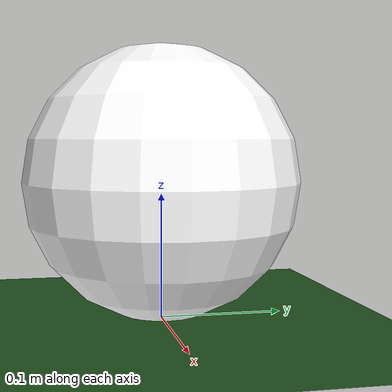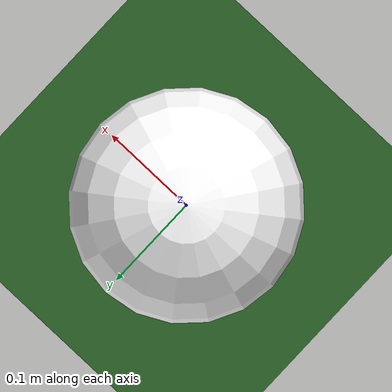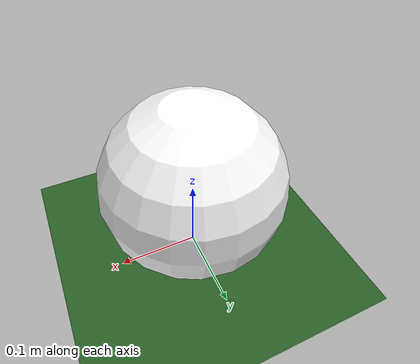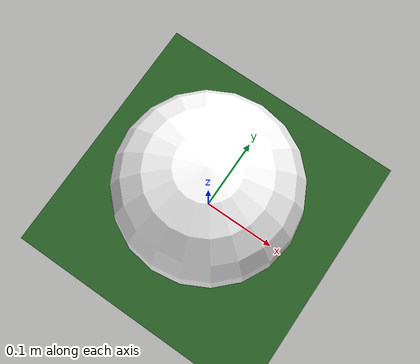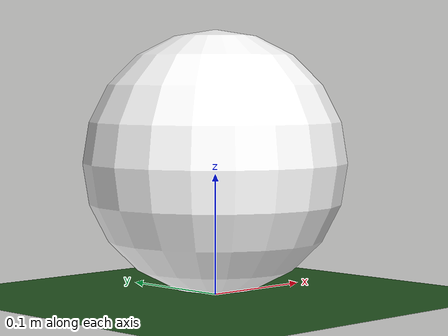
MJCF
<mujoco>
  <compiler angle="radian" assetdir="assets"/>

  <option timestep="0.005" density="1.2" viscosity="0.00002"/>

  <default>
    <!-- geometry classes -->
    <default class="visual">
      <geom contype="0" conaffinity="0" group="2" density="0"/>
    </default>
  </default>

  <asset>
    <!-- Material for the soccer field. -->
    <texture name="field-grass" type="2d" file="field_grass.png"/>
    <material name="pitch" reflectance="0.0" texture="field-grass" rgba="0.5 0.6 0.55 1"/>

    <!-- Material for the field border. -->
    <texture name="border-grass" type="2d" file="border_grass.png"/>
    <material name="lr-border" reflectance="0.0" texture="border-grass" rgba="0.4 0.5 0.45 1"/>
    <material name="tb-border" reflectance="0.0" texture="border-grass" rgba="0.4 0.5 0.45 1"/>

    <!-- Material for the field line markings. -->
    <material name="line" rgba="0.92 0.96 0.90 1"/>

    <!-- Material for the goal posts and nets. -->
    <material name="goal-post" rgba="0.8 0.8 0.8 1"/>
    <material name="goal-net" rgba="1 1 1 0.2"/>

    <!-- Material for the ball. -->
    <texture name="ball" type="cube" fileup="up.png" filedown="down.png" filefront="front.png" fileback="back.png" fileleft="left.png" fileright="right.png"/>
    <material name="ball" texture="ball"/>
  </asset>

  <worldbody>
    <light cutoff="100" diffuse="1 1 1" dir="-0 0 -1.3" directional="true" exponent="1" pos="0 0 1.3" specular=".1 .1 .1"/>
    <geom name="pitch" material="pitch" pos="0 0 0" size="32 24 40" type="plane"/>

    <geom name="left-border"   class="visual" material="lr-border" pos="-33 0 0" size="1 24 40" type="plane"/>
    <geom name="right-border"  class="visual" material="lr-border" pos="33 0 0"  size="1 24 40" type="plane"/>
    <geom name="top-border"    class="visual" material="tb-border" pos="0 25 0"  size="34 1 40" type="plane"/>
    <geom name="bottom-border" class="visual" material="tb-border" pos="0 -25 0" size="34 1 40" type="plane"/>

    <body name="ball" pos="0 0 0.11">
      <freejoint name="ball-root"/>
      <site name='B-vismarker' pos='0 0 0'/>
      <geom name="ball" pos="0 0 0" size="0.11" mass="0.41" friction="0.4 0.01 0.01" rgba="1 1 1 1" condim="6" priority="1" solref="-5000 -20" type="sphere" material="ball"/>
    </body>
  </worldbody>
</mujoco>
